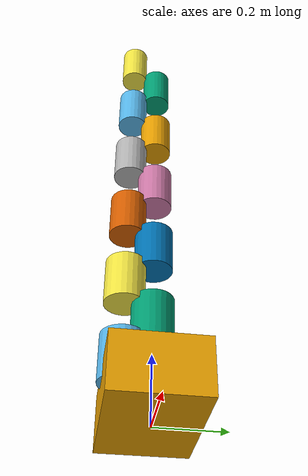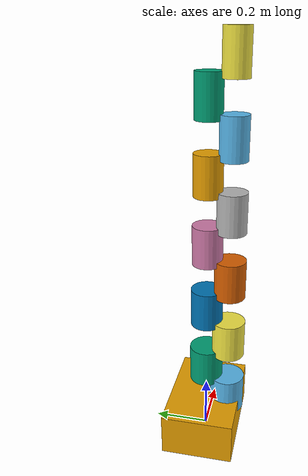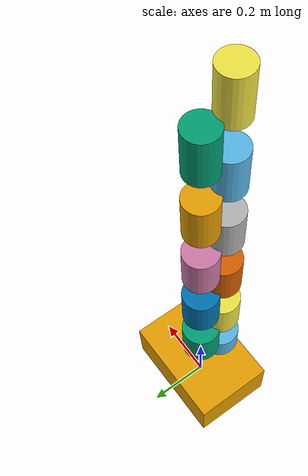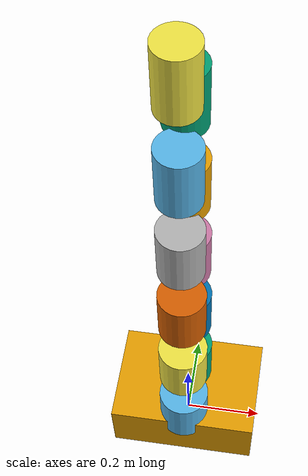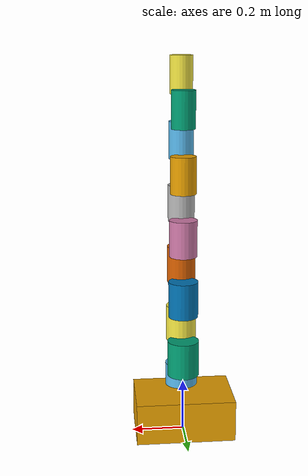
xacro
<?xml version="1.0" encoding="utf-8"?>
<!-- 现实基准原件: pmb2_robot (pmb2_description/urdf/base/base_sensors.urdf.xacro)                                          -->
<!-- 机型描述: PAL Robotics PMB-2 室内移动机器人底盘 URDF/XACRO 基准                                                                   -->
<!-- 运动学拓扑统计: 多机型合集/宏模板                                                    -->
<robot name="pmb2_robot">
  <link name="base_link">
    <inertial>
      <origin xyz="0 0 0.08" rpy="0 0 0"/>
      <mass value="16.40"/>
      <inertia ixx="0.185" ixy="0.0" ixz="0.0" iyy="0.240" iyz="0.0" izz="0.295"/>
    </inertial>
    <visual>
      <origin xyz="0 0 0.08" rpy="0 0 0"/>
      <geometry><box size="0.38 0.26 0.16"/></geometry>
    </visual>
    <collision>
      <origin xyz="0 0 0.08" rpy="0 0 0"/>
      <geometry><box size="0.38 0.26 0.16"/></geometry>
    </collision>
  </link>

  <link name="link_1">
    <inertial>
      <origin xyz="0 0 0.06" rpy="0 0 0"/>
      <mass value="3.200"/>
      <inertia ixx="0.014" ixy="0.0" ixz="0.0" iyy="0.014" iyz="0.0" izz="0.008"/>
    </inertial>
    <visual>
      <origin xyz="0 0 0.06" rpy="0 0 0"/>
      <geometry><cylinder radius="0.063" length="0.14"/></geometry>
    </visual>
  </link>
  <joint name="joint_1" type="revolute">
    <parent link="base_link"/>
    <child link="link_1"/>
    <origin xyz="0 -0.080 0.12" rpy="0 0 0"/>
    <axis xyz="1 0 0"/>
    <limit lower="-2.7925" upper="2.7925" effort="85.0" velocity="6.28"/>
  </joint>

  <link name="link_2">
    <inertial>
      <origin xyz="0 0 0.06" rpy="0 0 0"/>
      <mass value="2.263"/>
      <inertia ixx="0.014" ixy="0.0" ixz="0.0" iyy="0.014" iyz="0.0" izz="0.008"/>
    </inertial>
    <visual>
      <origin xyz="0 0 0.06" rpy="0 0 0"/>
      <geometry><cylinder radius="0.061" length="0.14"/></geometry>
    </visual>
  </link>
  <joint name="joint_2" type="revolute">
    <parent link="link_1"/>
    <child link="link_2"/>
    <origin xyz="0 0.080 0.12" rpy="0 0 0"/>
    <axis xyz="0 1 0"/>
    <limit lower="-2.7925" upper="2.7925" effort="85.0" velocity="6.28"/>
  </joint>

  <link name="link_3">
    <inertial>
      <origin xyz="0 0 0.06" rpy="0 0 0"/>
      <mass value="1.848"/>
      <inertia ixx="0.014" ixy="0.0" ixz="0.0" iyy="0.014" iyz="0.0" izz="0.008"/>
    </inertial>
    <visual>
      <origin xyz="0 0 0.06" rpy="0 0 0"/>
      <geometry><cylinder radius="0.059" length="0.14"/></geometry>
    </visual>
  </link>
  <joint name="joint_3" type="revolute">
    <parent link="link_2"/>
    <child link="link_3"/>
    <origin xyz="0 -0.080 0.12" rpy="0 0 0"/>
    <axis xyz="0 0 1"/>
    <limit lower="-2.7925" upper="2.7925" effort="85.0" velocity="6.28"/>
  </joint>

  <link name="link_4">
    <inertial>
      <origin xyz="0 0 0.06" rpy="0 0 0"/>
      <mass value="1.600"/>
      <inertia ixx="0.014" ixy="0.0" ixz="0.0" iyy="0.014" iyz="0.0" izz="0.008"/>
    </inertial>
    <visual>
      <origin xyz="0 0 0.06" rpy="0 0 0"/>
      <geometry><cylinder radius="0.057" length="0.14"/></geometry>
    </visual>
  </link>
  <joint name="joint_4" type="revolute">
    <parent link="link_3"/>
    <child link="link_4"/>
    <origin xyz="0 0.080 0.12" rpy="0 0 0"/>
    <axis xyz="0 1 0"/>
    <limit lower="-2.7925" upper="2.7925" effort="85.0" velocity="6.28"/>
  </joint>

  <link name="link_5">
    <inertial>
      <origin xyz="0 0 0.06" rpy="0 0 0"/>
      <mass value="1.431"/>
      <inertia ixx="0.014" ixy="0.0" ixz="0.0" iyy="0.014" iyz="0.0" izz="0.008"/>
    </inertial>
    <visual>
      <origin xyz="0 0 0.06" rpy="0 0 0"/>
      <geometry><cylinder radius="0.055" length="0.14"/></geometry>
    </visual>
  </link>
  <joint name="joint_5" type="revolute">
    <parent link="link_4"/>
    <child link="link_5"/>
    <origin xyz="0 -0.080 0.12" rpy="0 0 0"/>
    <axis xyz="1 0 0"/>
    <limit lower="-2.7925" upper="2.7925" effort="85.0" velocity="6.28"/>
  </joint>

  <link name="link_6">
    <inertial>
      <origin xyz="0 0 0.06" rpy="0 0 0"/>
      <mass value="1.306"/>
      <inertia ixx="0.014" ixy="0.0" ixz="0.0" iyy="0.014" iyz="0.0" izz="0.008"/>
    </inertial>
    <visual>
      <origin xyz="0 0 0.06" rpy="0 0 0"/>
      <geometry><cylinder radius="0.053" length="0.14"/></geometry>
    </visual>
  </link>
  <joint name="joint_6" type="revolute">
    <parent link="link_5"/>
    <child link="link_6"/>
    <origin xyz="0 0.080 0.12" rpy="0 0 0"/>
    <axis xyz="0 0 1"/>
    <limit lower="-2.7925" upper="2.7925" effort="85.0" velocity="6.28"/>
  </joint>

  <link name="link_7">
    <inertial>
      <origin xyz="0 0 0.06" rpy="0 0 0"/>
      <mass value="1.209"/>
      <inertia ixx="0.014" ixy="0.0" ixz="0.0" iyy="0.014" iyz="0.0" izz="0.008"/>
    </inertial>
    <visual>
      <origin xyz="0 0 0.06" rpy="0 0 0"/>
      <geometry><cylinder radius="0.051" length="0.14"/></geometry>
    </visual>
  </link>
  <joint name="joint_7" type="revolute">
    <parent link="link_6"/>
    <child link="link_7"/>
    <origin xyz="0 -0.080 0.12" rpy="0 0 0"/>
    <axis xyz="1 0 0"/>
    <limit lower="-2.7925" upper="2.7925" effort="85.0" velocity="6.28"/>
  </joint>

  <link name="link_8">
    <inertial>
      <origin xyz="0 0 0.06" rpy="0 0 0"/>
      <mass value="1.131"/>
      <inertia ixx="0.014" ixy="0.0" ixz="0.0" iyy="0.014" iyz="0.0" izz="0.008"/>
    </inertial>
    <visual>
      <origin xyz="0 0 0.06" rpy="0 0 0"/>
      <geometry><cylinder radius="0.049" length="0.14"/></geometry>
    </visual>
  </link>
  <joint name="joint_8" type="revolute">
    <parent link="link_7"/>
    <child link="link_8"/>
    <origin xyz="0 0.080 0.12" rpy="0 0 0"/>
    <axis xyz="0 1 0"/>
    <limit lower="-2.7925" upper="2.7925" effort="85.0" velocity="6.28"/>
  </joint>

  <link name="link_9">
    <inertial>
      <origin xyz="0 0 0.06" rpy="0 0 0"/>
      <mass value="1.067"/>
      <inertia ixx="0.014" ixy="0.0" ixz="0.0" iyy="0.014" iyz="0.0" izz="0.008"/>
    </inertial>
    <visual>
      <origin xyz="0 0 0.06" rpy="0 0 0"/>
      <geometry><cylinder radius="0.047" length="0.14"/></geometry>
    </visual>
  </link>
  <joint name="joint_9" type="revolute">
    <parent link="link_8"/>
    <child link="link_9"/>
    <origin xyz="0 -0.080 0.12" rpy="0 0 0"/>
    <axis xyz="0 0 1"/>
    <limit lower="-2.7925" upper="2.7925" effort="85.0" velocity="6.28"/>
  </joint>

  <link name="link_10">
    <inertial>
      <origin xyz="0 0 0.06" rpy="0 0 0"/>
      <mass value="1.012"/>
      <inertia ixx="0.014" ixy="0.0" ixz="0.0" iyy="0.014" iyz="0.0" izz="0.008"/>
    </inertial>
    <visual>
      <origin xyz="0 0 0.06" rpy="0 0 0"/>
      <geometry><cylinder radius="0.045" length="0.14"/></geometry>
    </visual>
  </link>
  <joint name="joint_10" type="revolute">
    <parent link="link_9"/>
    <child link="link_10"/>
    <origin xyz="0 0.080 0.12" rpy="0 0 0"/>
    <axis xyz="0 1 0"/>
    <limit lower="-2.7925" upper="2.7925" effort="85.0" velocity="6.28"/>
  </joint>

  <link name="link_11">
    <inertial>
      <origin xyz="0 0 0.06" rpy="0 0 0"/>
      <mass value="0.965"/>
      <inertia ixx="0.014" ixy="0.0" ixz="0.0" iyy="0.014" iyz="0.0" izz="0.008"/>
    </inertial>
    <visual>
      <origin xyz="0 0 0.06" rpy="0 0 0"/>
      <geometry><cylinder radius="0.043" length="0.14"/></geometry>
    </visual>
  </link>
  <joint name="joint_11" type="revolute">
    <parent link="link_10"/>
    <child link="link_11"/>
    <origin xyz="0 -0.080 0.12" rpy="0 0 0"/>
    <axis xyz="1 0 0"/>
    <limit lower="-2.7925" upper="2.7925" effort="85.0" velocity="6.28"/>
  </joint>
</robot>
